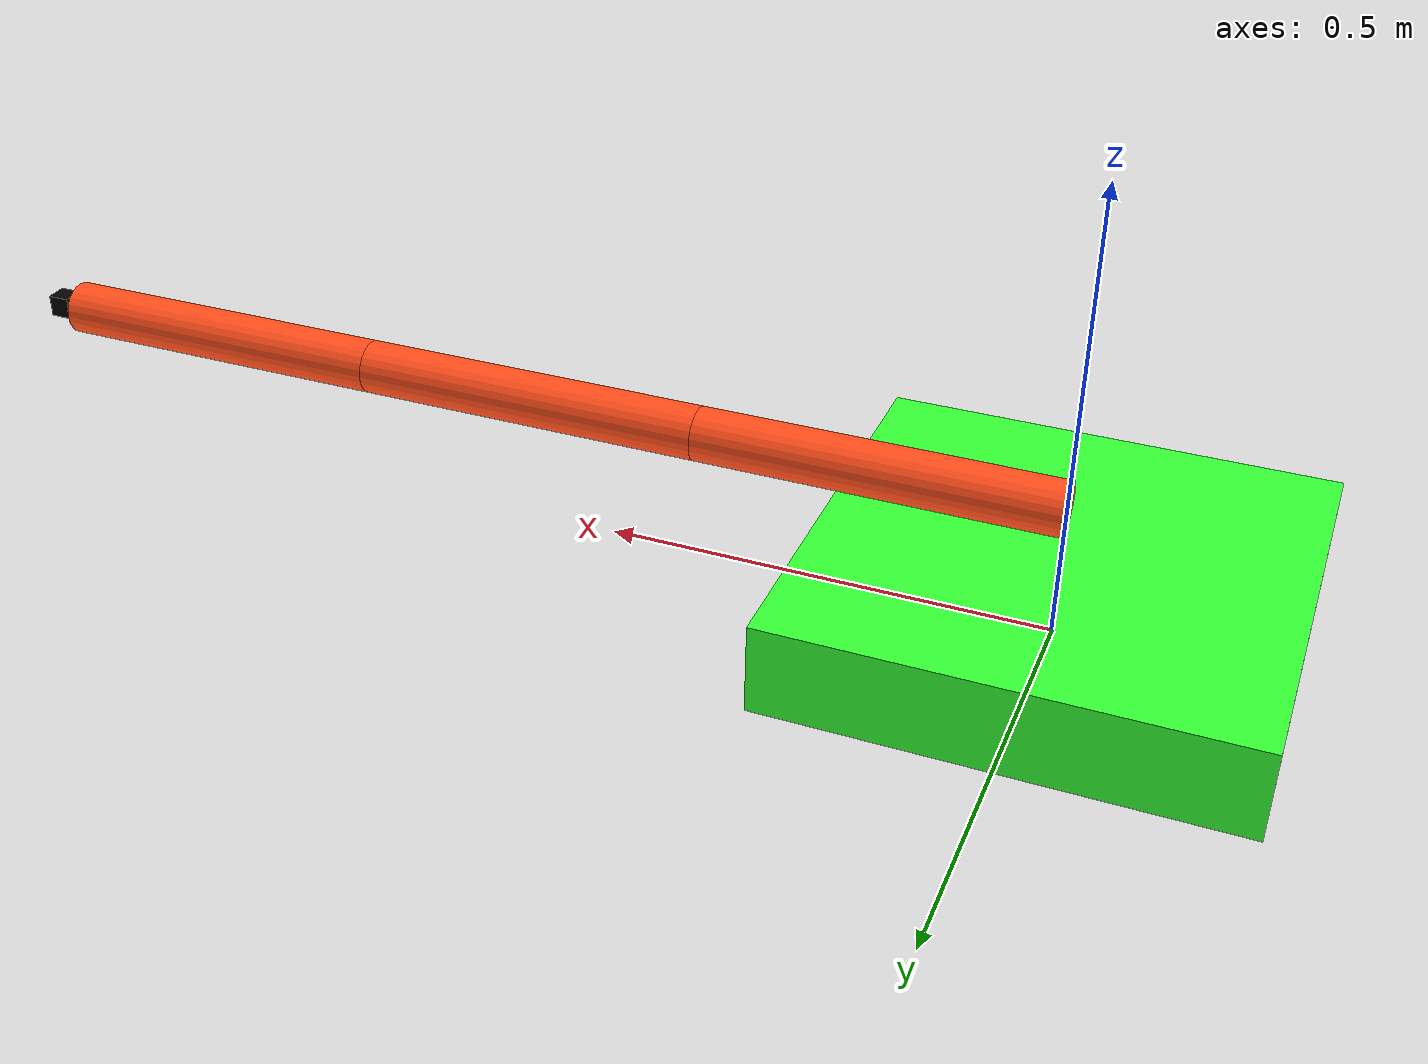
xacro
<?xml version="1.0"?>
<robot xmlns:xacro="http://www.ros.org/wiki/xacro"  name="robot">

	<xacro:include filename="include.xacro"/>
	<xacro:property name="arm_length" value="0.4"/>
	<xacro:property name="arm_radius" value="0.03"/>

	<link name="world"/>

	<joint name="base_joint" type="fixed">
		<origin xyz="0 0 0" rpy="0 0 0"/>
		<parent link="world"/>
		<child link="base_link"/>
	</joint>

	<link name="base_link">
		<visual>
			<origin xyz="0 0 0.05" rpy="0 0 0"/>
			<geometry>
				<box size="0.5 0.5 0.1"/>
			</geometry>
			<material name="green">
				<color rgba="0.2 1 0.2 1"/>
			</material>
		</visual>
		<collision>
			<origin xyz="0 0 0.05" rpy="0 0 0"/>
			<geometry>
				<box size="2.5 1.5 0.1"/>
			</geometry>
		</collision>
		<inertial>
			<origin xyz="0 0 0.05" rpy="0 0 0"/>
			<mass value="12"/>
			<inertia ixx="2.26" ixy="0.0" ixz="0.0" iyy="6.26" iyz="0.0" izz="8.5"/>
		</inertial>
	</link>

	<joint name="arm_joint" type="revolute">
		<origin xyz="0 0 0.15" rpy="0 0 0"/>
		<parent link="base_link"/>
		<child link="arm_link"/>
		<axis xyz="0 0 1"/>
		<limit lower="${-pi/2}" upper="${pi/2}" velocity="1" effort="100"/>
	</joint>

	<link name="arm_link">
		<visual>
			<origin xyz="${arm_length/2} 0 0" rpy="0 ${pi/2} 0"/>
			<geometry>
				<cylinder length="${arm_length}" radius="${arm_radius}"/>
			</geometry>
			<material name="orange"/>
		</visual>
		<collision>
			<origin xyz="${arm_length/2} 0 0" rpy="0 ${pi/2} 0"/>
			<geometry>
				<cylinder length="${arm_length}" radius="${arm_radius}"/>
			</geometry>
		</collision>
		<xacro:inertial_cylinder mass="1.0" length="${arm_length}" radius="${arm_radius}">
			<origin xyz="${arm_length/2} 0 0" rpy="0 ${pi/2} 0"/>
		</xacro:inertial_cylinder>
	</link>

	<joint name="arm_joint_2" type="revolute">
		<origin xyz="${arm_length} 0 0" rpy="0 0 0"/>
		<parent link="arm_link"/>
		<child link="arm_link_2"/>
		<axis xyz="0 1 0"/>
		<limit lower="${-pi/2}" upper="${pi/2}" velocity="1" effort="100"/>
	</joint>

	<link name="arm_link_2">
		<visual>
			<origin xyz="${arm_length/2} 0 0" rpy="0 ${pi/2} 0"/>
			<geometry>
				<cylinder length="${arm_length}" radius="${arm_radius}"/>
			</geometry>
			<material name="orange"/>
		</visual>
		<collision>
			<origin xyz="${arm_length/2} 0 0" rpy="0 ${pi/2} 0"/>
			<geometry>
				<cylinder length="${arm_length}" radius="${arm_radius}"/>
			</geometry>
		</collision>
		<xacro:inertial_cylinder mass="1.0" length="${arm_length}" radius="${arm_radius}">
			<origin xyz="${arm_length/2} 0 0" rpy="0 ${pi/2} 0"/>
		</xacro:inertial_cylinder>
	</link>

	<joint name="arm_joint_3" type="revolute">
		<origin xyz="${arm_length} 0 0" rpy="0 0 0"/>
		<parent link="arm_link_2"/>
		<child link="arm_link_3"/>
		<axis xyz="0 1 0"/>
		<limit lower="${-pi/2}" upper="${pi/2}" velocity="1" effort="100"/>
	</joint>

	<link name="arm_link_3">
		<visual>
			<origin xyz="${arm_length/2} 0 0" rpy="0 ${pi/2} 0"/>
			<geometry>
				<cylinder length="${arm_length}" radius="${arm_radius}"/>
			</geometry>
			<material name="orange"/>
		</visual>
		<collision>
			<origin xyz="${arm_length/2} 0 0" rpy="0 ${pi/2} 0"/>
			<geometry>
				<cylinder length="${arm_length}" radius="${arm_radius}"/>
			</geometry>
		</collision>
		<xacro:inertial_cylinder mass="1.0" length="${arm_length}" radius="${arm_radius}">
			<origin xyz="${arm_length/2} 0 0" rpy="0 ${pi/2} 0"/>
		</xacro:inertial_cylinder>
	</link>

	<link name="imu_link"/>
	<!-- IMU Joint -->
	<joint name="imu_joint" type="fixed">
		<parent link="arm_link_3"/>
		<child link="imu_link"/>
		<origin xyz="${arm_length} 0 0" rpy="0 0 0"/>
	</joint>

	<link name="camera_link">
		<visual>
			<geometry>
				<box size="0.025 0.025 0.025"/>
			</geometry>
			<material name="black">
				<color rgba="0 0 0 1"/>
			</material>
		</visual>
	</link>
	<!-- Camera joint -->
	<joint name="camera_joint" type="fixed">
		<parent link="arm_link_3"/>
		<child link="camera_link"/>
		<origin xyz="${arm_length + 0.026} 0 0" rpy="0 0 0"/>
		<!-- Offset to bring out of visual box and arm -->
	</joint>

	<!-- Camera Optical Link -->
	<link name="camera_optical_link"/>
	<joint name="camera_optical_joint" type="fixed">
		<parent link="camera_link"/>
		<child link="camera_optical_link"/>
		<origin xyz="0 0 0" rpy="${-pi/2} 0 ${-pi/2}"/>
	</joint>

	<!-- ROS2 Control & Gazebo Config -->
	<ros2_control name="IgnitionSystem" type="system">
		<hardware>
			<plugin>ign_ros2_control/IgnitionSystem</plugin>
		</hardware>
		<joint name="arm_joint">
			<command_interface name="position"/>
			<state_interface name="position"/>
			<state_interface name="velocity"/>
		</joint>
		<joint name="arm_joint_2">
			<command_interface name="position"/>
			<state_interface name="position"/>
			<state_interface name="velocity"/>
		</joint>
		<joint name="arm_joint_3">
			<command_interface name="position"/>
			<state_interface name="position"/>
			<state_interface name="velocity"/>
		</joint>
	</ros2_control>

	<gazebo>
		<plugin filename="ign_ros2_control-system" name="ign_ros2_control::IgnitionROS2ControlPlugin">
			<parameters>$(find camximu)/config/three_dof_controller.yaml</parameters>
		</plugin>
	</gazebo>

	<!-- IMU Sensor -->
	<gazebo reference="imu_link">
		<sensor name="imu_sensor" type="imu">
			<ignition_frame_id>imu_link</ignition_frame_id>
			<!-- Message header must match URDF link name -->
			<always_on>1</always_on>
			<update_rate>100</update_rate>
			<visualize>true</visualize>
			<topic>imu</topic>
		</sensor>
	</gazebo>

	<!-- Camera Sensor -->
	<gazebo reference="camera_link">
		<sensor name="camera_sensor" type="camera">
			<pose>0 0 0 0 0 0</pose>
			<ignition_frame_id>camera_optical_link</ignition_frame_id>
			<!-- Message header must match URDF link name -->
			<always_on>1</always_on>
			<update_rate>30</update_rate>
			<visualize>true</visualize>
			<topic>camera/image_raw</topic>
			<camera>
				<horizontal_fov>1.047</horizontal_fov>
				<image>
					<width>640</width>
					<height>480</height>
					<format>R8G8B8</format>
				</image>
				<clip>
					<near>0.01</near>
					<far>100</far>
				</clip>
			</camera>
		</sensor>
	</gazebo>
</robot>

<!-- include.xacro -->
<robot xmlns:xacro="http://www.ros.org/wiki/xacro" >

    <material name="white">
        <color rgba="1 1 1 1"/>
    </material>

    <material name="orange">
        <color rgba="1 0.3 0.1 1"/>
    </material>

    <material name="blue">
        <color rgba="0.2 0.2 1 1"/>
    </material>

    <xacro:macro name="inertial_sphere" params="mass radius *origin">
        <inertial>
            <xacro:insert_block name="origin"/>
            <mass value="${mass}" />
            <inertia ixx="${(2/5) * mass * (radius*radius)}" ixy="0.0" ixz="0.0"
                    iyy="${(2/5) * mass * (radius*radius)}" iyz="0.0"
                    izz="${(2/5) * mass * (radius*radius)}" />
        </inertial>
    </xacro:macro>

    <xacro:macro name="inertial_box" params="mass x y z *origin">
        <inertial>
            <xacro:insert_block name="origin"/>
            <mass value="${mass}" />
            <inertia ixx="${(1/12) * mass * (y*y+z*z)}" ixy="0.0" ixz="0.0"
                    iyy="${(1/12) * mass * (x*x+z*z)}" iyz="0.0"
                    izz="${(1/12) * mass * (x*x+y*y)}" />
        </inertial>
    </xacro:macro>

    <xacro:macro name="inertial_cylinder" params="mass length radius *origin">
        <inertial>
            <xacro:insert_block name="origin"/>
            <mass value="${mass}" />
            <inertia ixx="${(1/12) * mass * (3*radius*radius + length*length)}" ixy="0.0" ixz="0.0"
                    iyy="${(1/12) * mass * (3*radius*radius + length*length)}" iyz="0.0"
                    izz="${(1/2) * mass * (radius*radius)}" />
        </inertial>
    </xacro:macro>

</robot>
